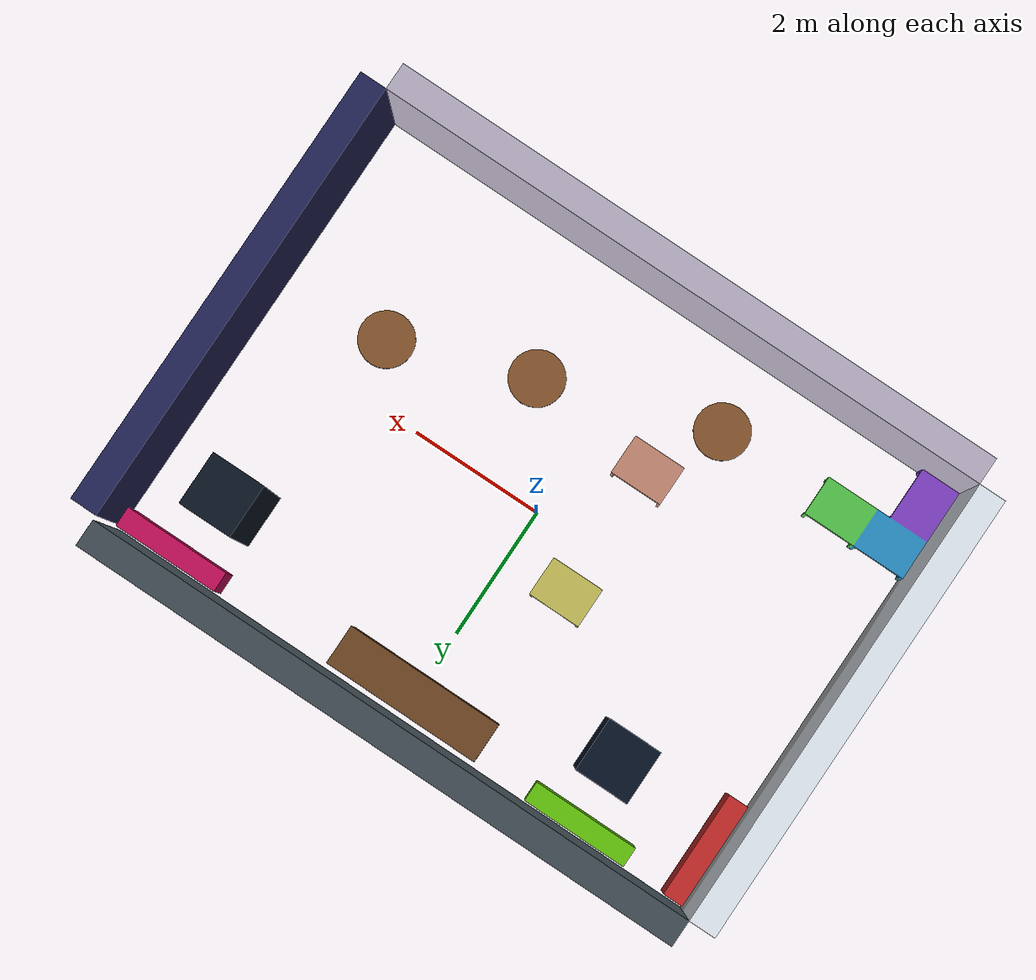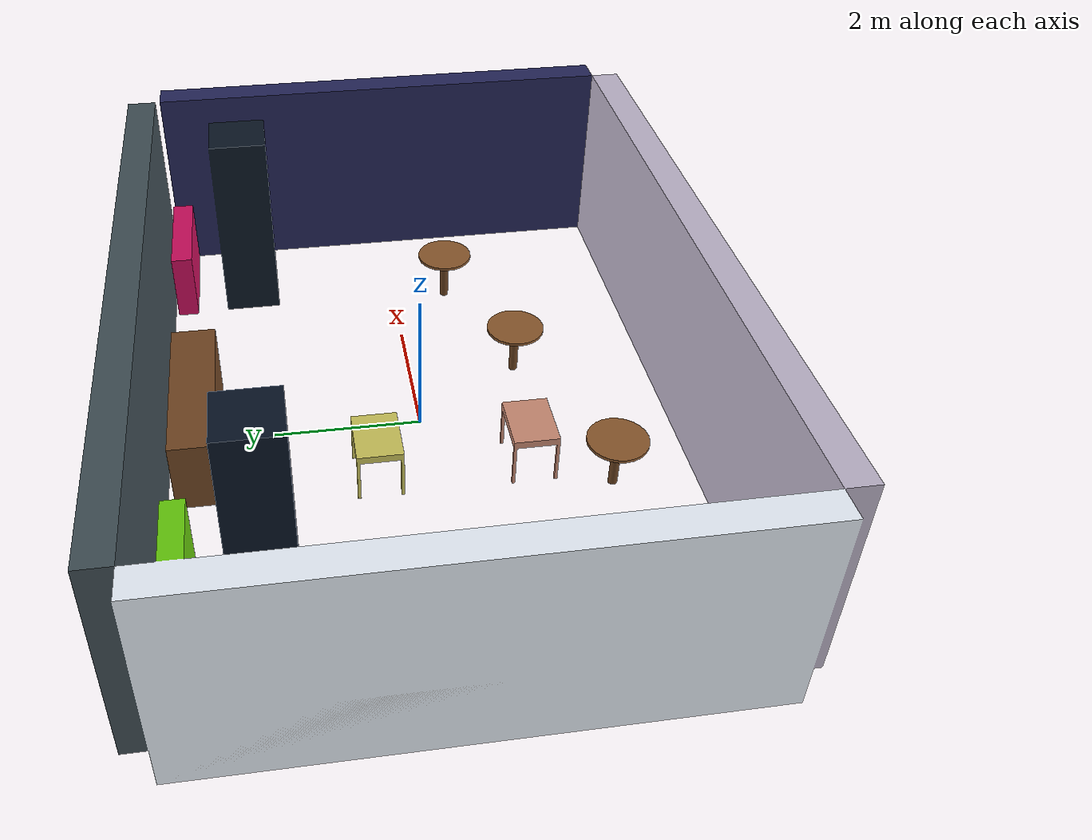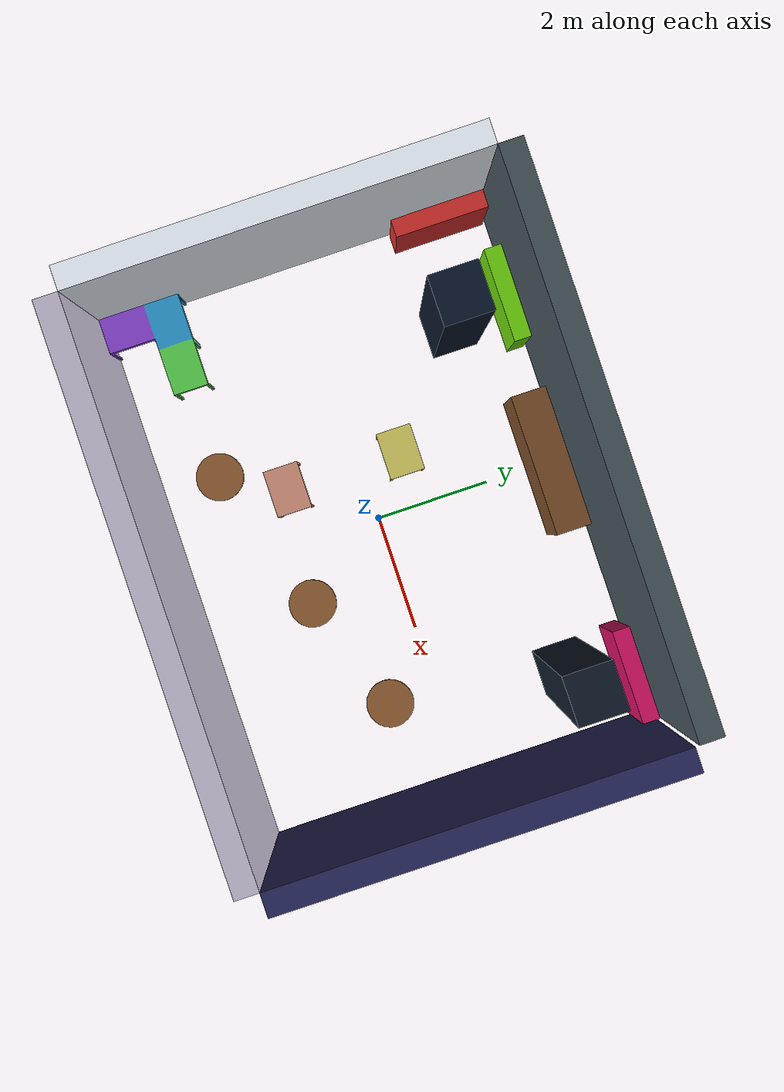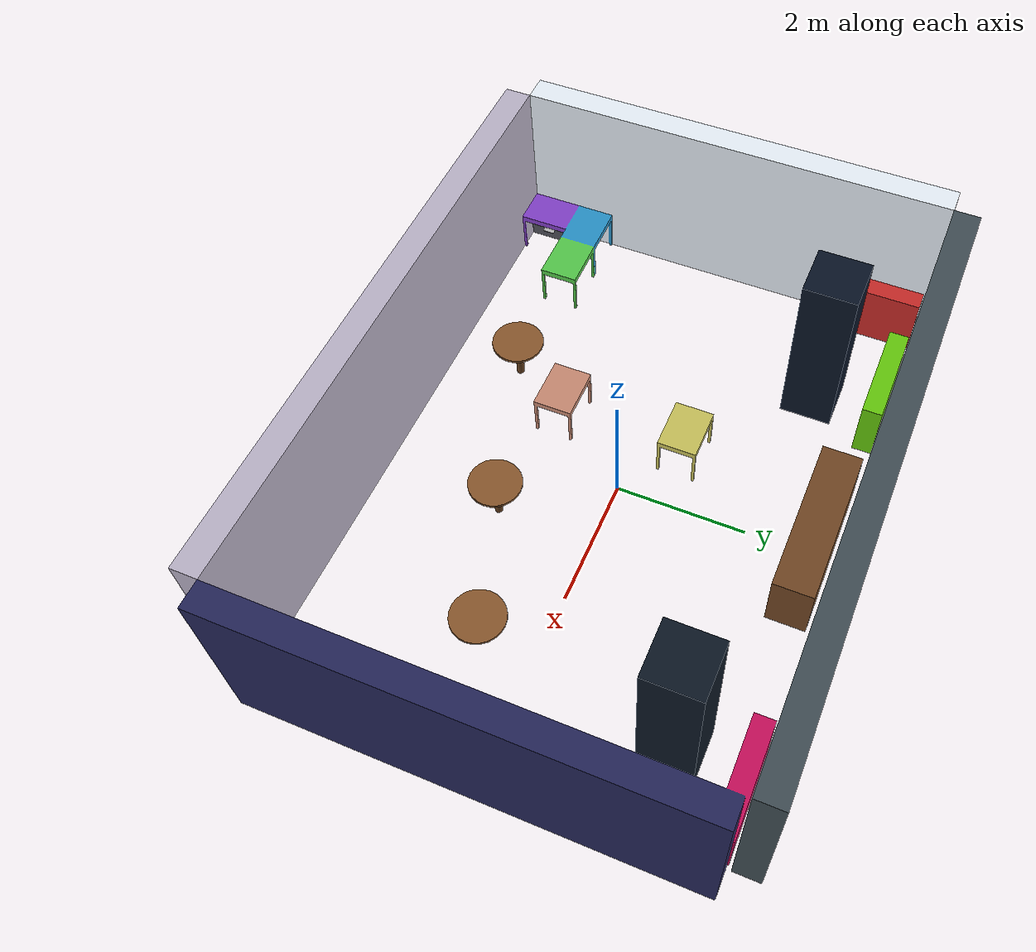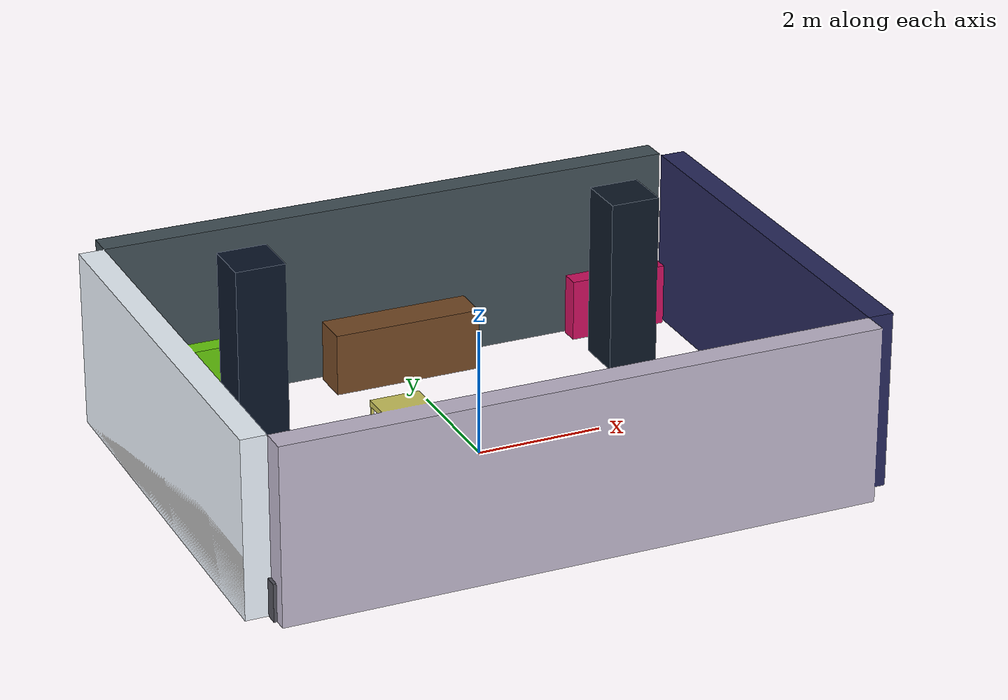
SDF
<sdf version="1.6">
 <world name="world_1206">
  <physics name="8ms" type="ode">
   <max_step_size>0.008</max_step_size>
   <real_time_factor>1</real_time_factor>
   <real_time_update_rate>125</real_time_update_rate>
  </physics>
  <plugin name="gz::sim::systems::Physics" filename="gz-sim-physics-system"/>
  <plugin name="gz::sim::systems::UserCommands" filename="gz-sim-user-commands-system"/>
  <plugin name="gz::sim::systems::SceneBroadcaster" filename="gz-sim-scene-broadcaster-system"/>
  <plugin name="gz::sim::systems::Contact" filename="gz-sim-contact-system"/>
  <plugin name="gz::sim::systems::Sensors" filename="gz-sim-sensors-system">
   <render_engine>ogre2</render_engine>
  </plugin>
  <plugin name="gz::sim::systems::Imu" filename="gz-sim-imu-system"/>
  <plugin name="gz::sim::systems::NavSat" filename="gz-sim-navsat-system"/>
  <spherical_coordinates>
   <surface_model>EARTH_WGS84</surface_model>
   <world_frame_orientation>ENU</world_frame_orientation>
   <latitude_deg>47.478950</latitude_deg>
   <longitude_deg>19.057785</longitude_deg>
   <elevation>0</elevation>
   <heading_deg>0</heading_deg>
  </spherical_coordinates>
  <light name="sun" type="directional">
   <pose>0 0 10 0 0 0</pose>
   <diffuse>0.8 0.8 0.8 1</diffuse>
   <specular>0.2 0.2 0.2 1</specular>
   <attenuation>
    <range>1000</range>
    <constant>0.9</constant>
    <linear>0.01</linear>
    <quadratic>0.001</quadratic>
   </attenuation>
   <direction>-0.5 0.1 -0.9</direction>
  </light>
  <model name="ground_plane">
   <static>1</static>
   <pose>0 0 0.015 0 0 0</pose>
   <link name="link">
    <collision name="collision">
     <geometry><plane><normal>0 0 1</normal><size>100 100</size></plane></geometry>
     <surface><friction><ode><mu>100</mu><mu2>50</mu2></ode></friction></surface>
    </collision>
   </link>
  </model>
  <model name="environment_1206_2">
   <static>true</static>
   <pose>-4.65 -3.80 0.5 0 0 0</pose>
   <link name="link">
    <collision name="collision">
     <geometry><mesh><uri>model://storagy/meshes/1206_2.dae</uri></mesh></geometry>
    </collision>
    <visual name="visual"><geometry><mesh><uri>model://storagy/meshes/1206_2.dae</uri></mesh></geometry></visual>
   </link>
  </model>
  <model name="cafe_table_1">
   <static>true</static>
   <pose>-1.5 -2.3 0 0 0 0</pose>
   <link name="link">
    <collision name="col">
     <pose>0 0 0.37 0 0 0</pose>
     <geometry><cylinder><radius>0.4</radius><length>0.74</length></cylinder></geometry>
    </collision>
    <visual name="leg">
     <pose>0 0 0.35 0 0 0</pose>
     <geometry><cylinder><radius>0.06</radius><length>0.70</length></cylinder></geometry>
     <material><ambient>0.25 0.15 0.08 1</ambient><diffuse>0.40 0.25 0.12 1</diffuse></material>
    </visual>
    <visual name="top">
     <pose>0 0 0.72 0 0 0</pose>
     <geometry><cylinder><radius>0.40</radius><length>0.04</length></cylinder></geometry>
     <material><ambient>0.30 0.18 0.10 1</ambient><diffuse>0.55 0.35 0.18 1</diffuse></material>
    </visual>
   </link>
  </model>
  <model name="cafe_table_2">
   <static>true</static>
   <pose>1.0 -1.5 0 0 0 0</pose>
   <link name="link">
    <collision name="col">
     <pose>0 0 0.37 0 0 0</pose>
     <geometry><cylinder><radius>0.4</radius><length>0.74</length></cylinder></geometry>
    </collision>
    <visual name="leg">
     <pose>0 0 0.35 0 0 0</pose>
     <geometry><cylinder><radius>0.06</radius><length>0.70</length></cylinder></geometry>
     <material><ambient>0.25 0.15 0.08 1</ambient><diffuse>0.40 0.25 0.12 1</diffuse></material>
    </visual>
    <visual name="top">
     <pose>0 0 0.72 0 0 0</pose>
     <geometry><cylinder><radius>0.40</radius><length>0.04</length></cylinder></geometry>
     <material><ambient>0.30 0.18 0.10 1</ambient><diffuse>0.55 0.35 0.18 1</diffuse></material>
    </visual>
   </link>
  </model>
  <model name="cafe_table_3">
   <static>true</static>
   <pose>3.0 -0.8 0 0 0 0</pose>
   <link name="link">
    <collision name="col">
     <pose>0 0 0.37 0 0 0</pose>
     <geometry><cylinder><radius>0.4</radius><length>0.74</length></cylinder></geometry>
    </collision>
    <visual name="leg">
     <pose>0 0 0.35 0 0 0</pose>
     <geometry><cylinder><radius>0.06</radius><length>0.70</length></cylinder></geometry>
     <material><ambient>0.25 0.15 0.08 1</ambient><diffuse>0.40 0.25 0.12 1</diffuse></material>
    </visual>
    <visual name="top">
     <pose>0 0 0.72 0 0 0</pose>
     <geometry><cylinder><radius>0.40</radius><length>0.04</length></cylinder></geometry>
     <material><ambient>0.30 0.18 0.10 1</ambient><diffuse>0.55 0.35 0.18 1</diffuse></material>
    </visual>
   </link>
  </model>
  <model name="counter">
   <static>true</static>
   <pose>0.0 3.0 0 0 0 0</pose>
   <link name="link">
    <collision name="col">
     <pose>0 0 0.5 0 0 0</pose>
     <geometry><box><size>2.4 0.6 1.0</size></box></geometry>
    </collision>
    <visual name="vis">
     <pose>0 0 0.5 0 0 0</pose>
     <geometry><box><size>2.4 0.6 1.0</size></box></geometry>
     <material><ambient>0.20 0.12 0.06 1</ambient><diffuse>0.45 0.28 0.14 1</diffuse></material>
    </visual>
   </link>
  </model>
  <model name="hideout_cabinet">
   <static>true</static>
   <pose>-4.55 -3.0 0 0 0 0</pose>
   <link name="link">
    <collision name="col">
     <pose>0 0 0.30 0 0 0</pose>
     <geometry><box><size>0.30 1.20 0.60</size></box></geometry>
    </collision>
    <visual name="vis">
     <pose>0 0 0.30 0 0 0</pose>
     <geometry><box><size>0.30 1.20 0.60</size></box></geometry>
     <material><ambient>0.18 0.18 0.20 1</ambient><diffuse>0.32 0.32 0.36 1</diffuse></material>
    </visual>
   </link>
  </model>
  <include><uri>model://aruco_0</uri><name>hideout_aruco</name><pose>-4.38 -3.0 0.35 0 1.5708 0</pose></include>
 </world>
</sdf>

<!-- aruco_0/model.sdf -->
<sdf version="1.6">
  <model name="aruco_0">
    <static>true</static>
    <link name="link">
      <visual name="visual">
        <geometry>
          <mesh>
            <uri>model://aruco_0/meshes/aruco_0.dae</uri>
          <scale>0.38 0.38 0.38</scale></mesh>
        </geometry>
      </visual>
    </link>
  </model>
</sdf>
